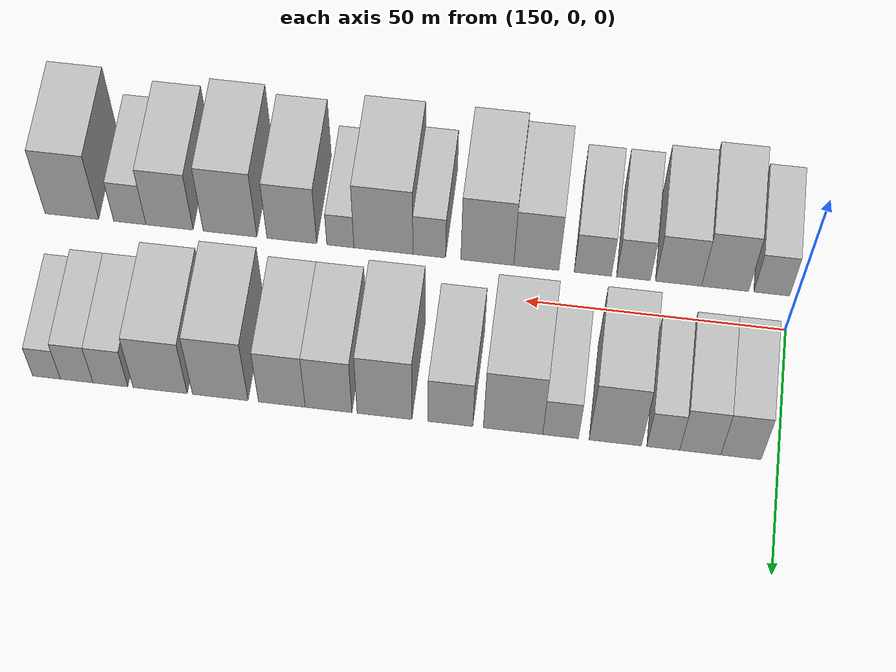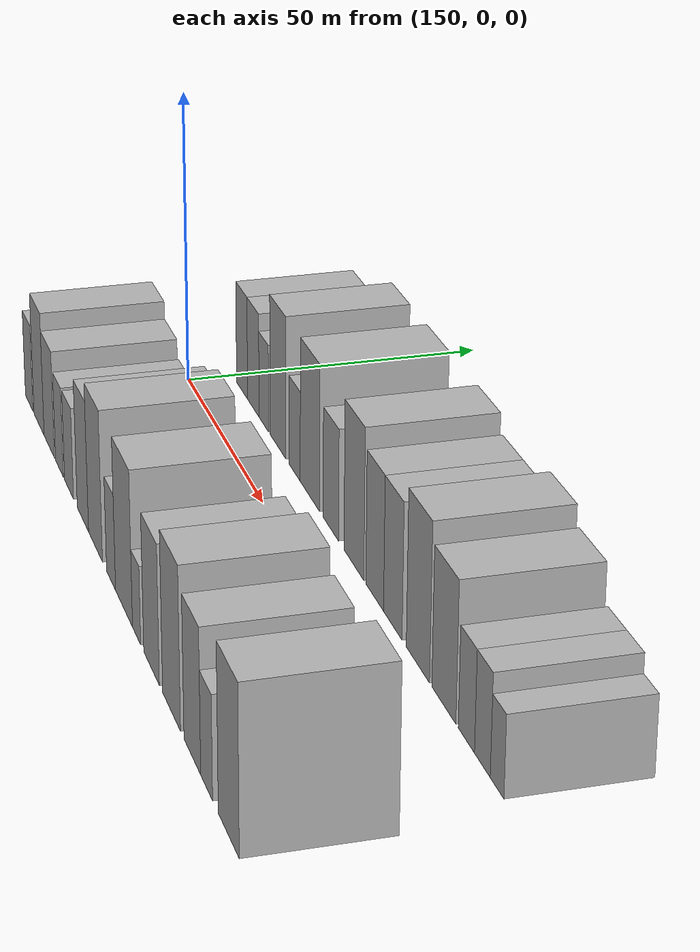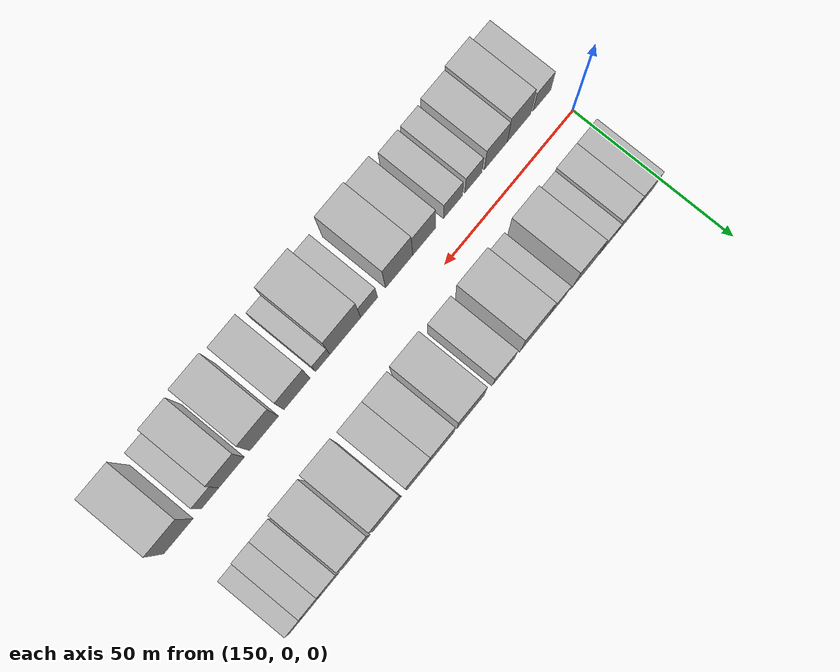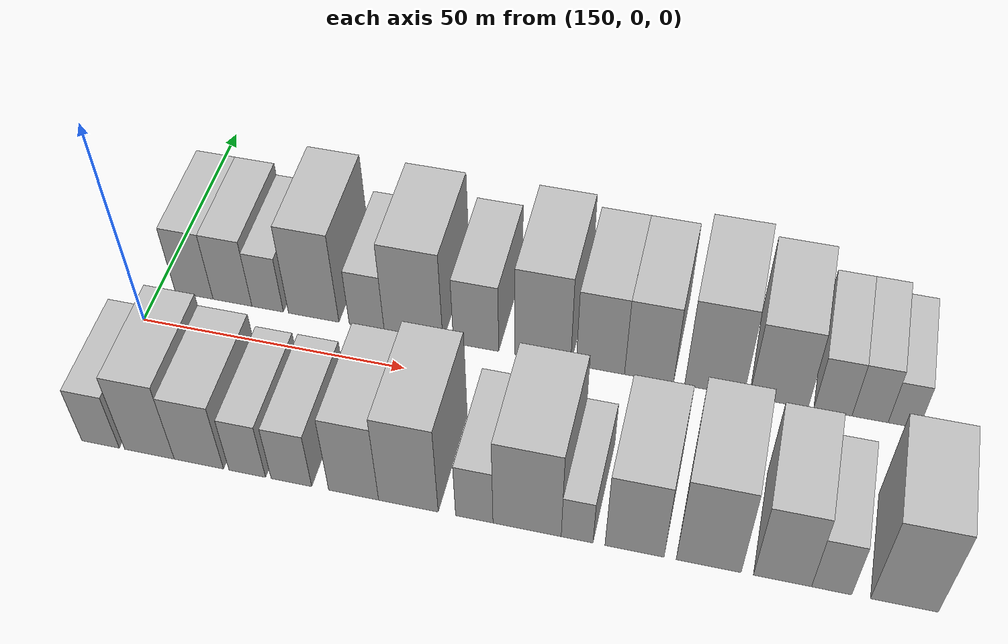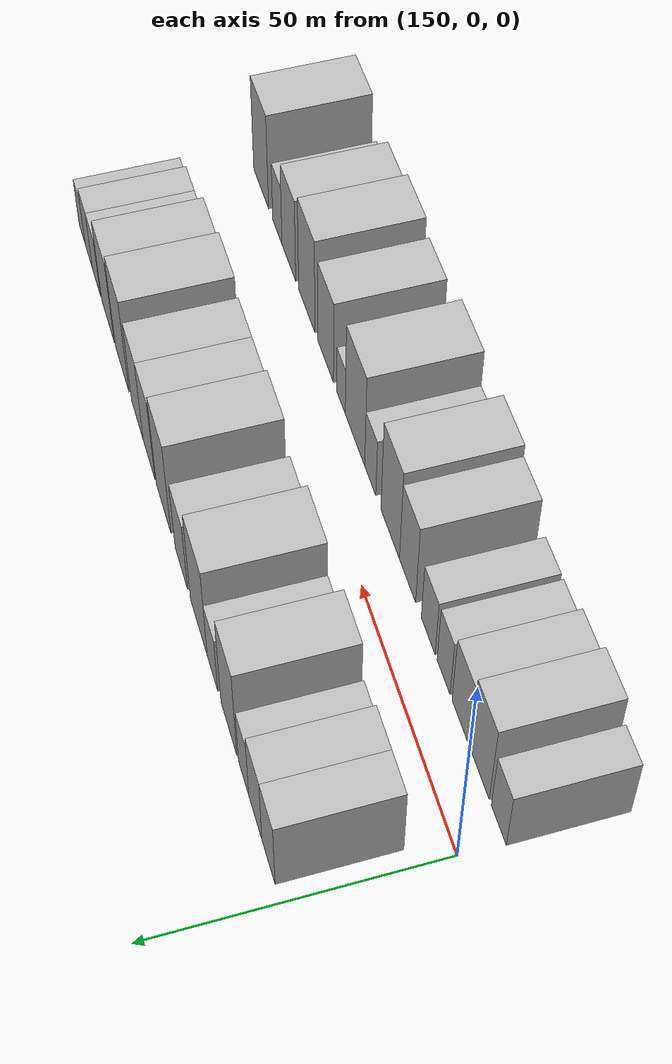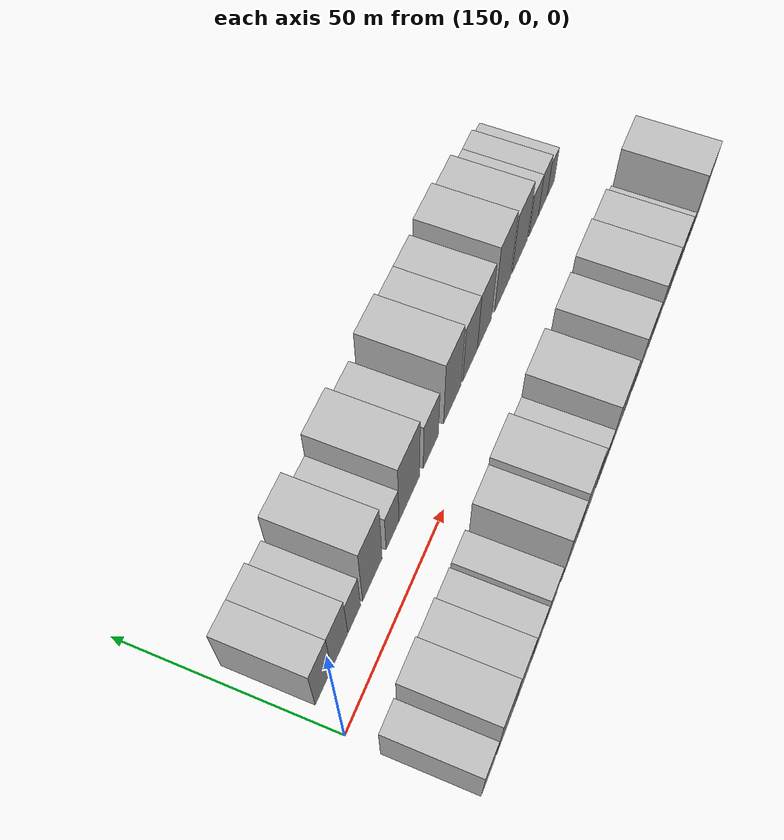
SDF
<sdf version="1.6">
 <world name="default">
  <model name="building_15">
   <static>1</static>
   <pose>156.9158 17.5000 0 0.000000 0.000000 1.570796</pose>
   <link name="link">
    <pose>0 0 9.00 0 0 0</pose>
    <collision name="collision"><geometry><box><size>20.0000 7.5116 18.0000</size></box></geometry></collision>
    <visual name="visual">
     <cast_shadows>0</cast_shadows>
     <geometry><box><size>20.0000 7.5116 18.0000</size></box></geometry>
     <material>
      <script>
       <uri>model://HANNAS_wall/materials/scripts</uri>
       <uri>model://HANNAS_wall/materials/textures</uri>
       <name>vrc/HANNAS_wall</name>
      </script>
     </material>
    </visual>
   </link>
  </model>
  <model name="building_16">
   <static>1</static>
   <pose>164.5097 17.5000 0 0.000000 0.000000 1.570796</pose>
   <link name="link">
    <pose>0 0 9.00 0 0 0</pose>
    <collision name="collision"><geometry><box><size>20.0000 7.6762 18.0000</size></box></geometry></collision>
    <visual name="visual">
     <cast_shadows>0</cast_shadows>
     <geometry><box><size>20.0000 7.6762 18.0000</size></box></geometry>
     <material>
      <script>
       <uri>model://HANNAS_wall/materials/scripts</uri>
       <uri>model://HANNAS_wall/materials/textures</uri>
       <name>vrc/HANNAS_wall</name>
      </script>
     </material>
    </visual>
   </link>
  </model>
  <model name="building_17">
   <static>1</static>
   <pose>171.4271 17.5000 0 0.000000 0.000000 1.570796</pose>
   <link name="link">
    <pose>0 0 7.50 0 0 0</pose>
    <collision name="collision"><geometry><box><size>20.0000 6.1585 15.0000</size></box></geometry></collision>
    <visual name="visual">
     <cast_shadows>0</cast_shadows>
     <geometry><box><size>20.0000 6.1585 15.0000</size></box></geometry>
     <material>
      <script>
       <uri>model://HANNAS_wall/materials/scripts</uri>
       <uri>model://HANNAS_wall/materials/textures</uri>
       <name>vrc/HANNAS_wall</name>
      </script>
     </material>
    </visual>
   </link>
  </model>
  <model name="building_18">
   <static>1</static>
   <pose>180.4077 17.5000 0 0.000000 0.000000 1.570796</pose>
   <link name="link">
    <pose>0 0 12.00 0 0 0</pose>
    <collision name="collision"><geometry><box><size>20.0000 9.8027 24.0000</size></box></geometry></collision>
    <visual name="visual">
     <cast_shadows>0</cast_shadows>
     <geometry><box><size>20.0000 9.8027 24.0000</size></box></geometry>
     <material>
      <script>
       <uri>model://HANNAS_wall/materials/scripts</uri>
       <uri>model://HANNAS_wall/materials/textures</uri>
       <name>vrc/HANNAS_wall</name>
      </script>
     </material>
    </visual>
   </link>
  </model>
  <model name="building_19">
   <static>1</static>
   <pose>190.6633 17.5000 0 0.000000 0.000000 1.570796</pose>
   <link name="link">
    <pose>0 0 7.50 0 0 0</pose>
    <collision name="collision"><geometry><box><size>20.0000 6.7086 15.0000</size></box></geometry></collision>
    <visual name="visual">
     <cast_shadows>0</cast_shadows>
     <geometry><box><size>20.0000 6.7086 15.0000</size></box></geometry>
     <material>
      <script>
       <uri>model://HANNAS_wall/materials/scripts</uri>
       <uri>model://HANNAS_wall/materials/textures</uri>
       <name>vrc/HANNAS_wall</name>
      </script>
     </material>
    </visual>
   </link>
  </model>
  <model name="building_20">
   <static>1</static>
   <pose>199.6065 17.5000 0 0.000000 0.000000 1.570796</pose>
   <link name="link">
    <pose>0 0 12.00 0 0 0</pose>
    <collision name="collision"><geometry><box><size>20.0000 11.1778 24.0000</size></box></geometry></collision>
    <visual name="visual">
     <cast_shadows>0</cast_shadows>
     <geometry><box><size>20.0000 11.1778 24.0000</size></box></geometry>
     <material>
      <script>
       <uri>model://HANNAS_wall/materials/scripts</uri>
       <uri>model://HANNAS_wall/materials/textures</uri>
       <name>vrc/HANNAS_wall</name>
      </script>
     </material>
    </visual>
   </link>
  </model>
  <model name="building_21">
   <static>1</static>
   <pose>211.4469 17.5000 0 0.000000 0.000000 1.570796</pose>
   <link name="link">
    <pose>0 0 9.00 0 0 0</pose>
    <collision name="collision"><geometry><box><size>20.0000 8.5030 18.0000</size></box></geometry></collision>
    <visual name="visual">
     <cast_shadows>0</cast_shadows>
     <geometry><box><size>20.0000 8.5030 18.0000</size></box></geometry>
     <material>
      <script>
       <uri>model://HANNAS_wall/materials/scripts</uri>
       <uri>model://HANNAS_wall/materials/textures</uri>
       <name>vrc/HANNAS_wall</name>
      </script>
     </material>
    </visual>
   </link>
  </model>
  <model name="building_22">
   <static>1</static>
   <pose>223.8881 17.5000 0 0.000000 0.000000 1.570796</pose>
   <link name="link">
    <pose>0 0 12.00 0 0 0</pose>
    <collision name="collision"><geometry><box><size>20.0000 10.3796 24.0000</size></box></geometry></collision>
    <visual name="visual">
     <cast_shadows>0</cast_shadows>
     <geometry><box><size>20.0000 10.3796 24.0000</size></box></geometry>
     <material>
      <script>
       <uri>model://HANNAS_wall/materials/scripts</uri>
       <uri>model://HANNAS_wall/materials/textures</uri>
       <name>vrc/HANNAS_wall</name>
      </script>
     </material>
    </visual>
   </link>
  </model>
  <model name="building_23">
   <static>1</static>
   <pose>234.5119 17.5000 0 0.000000 0.000000 1.570796</pose>
   <link name="link">
    <pose>0 0 10.50 0 0 0</pose>
    <collision name="collision"><geometry><box><size>20.0000 8.8680 21.0000</size></box></geometry></collision>
    <visual name="visual">
     <cast_shadows>0</cast_shadows>
     <geometry><box><size>20.0000 8.8680 21.0000</size></box></geometry>
     <material>
      <script>
       <uri>model://HANNAS_wall/materials/scripts</uri>
       <uri>model://HANNAS_wall/materials/textures</uri>
       <name>vrc/HANNAS_wall</name>
      </script>
     </material>
    </visual>
   </link>
  </model>
  <model name="building_24">
   <static>1</static>
   <pose>243.3995 17.5000 0 0.000000 0.000000 1.570796</pose>
   <link name="link">
    <pose>0 0 10.50 0 0 0</pose>
    <collision name="collision"><geometry><box><size>20.0000 8.9071 21.0000</size></box></geometry></collision>
    <visual name="visual">
     <cast_shadows>0</cast_shadows>
     <geometry><box><size>20.0000 8.9071 21.0000</size></box></geometry>
     <material>
      <script>
       <uri>model://HANNAS_wall/materials/scripts</uri>
       <uri>model://HANNAS_wall/materials/textures</uri>
       <name>vrc/HANNAS_wall</name>
      </script>
     </material>
    </visual>
   </link>
  </model>
  <model name="building_25">
   <static>1</static>
   <pose>255.1642 17.5000 0 0.000000 0.000000 1.570796</pose>
   <link name="link">
    <pose>0 0 12.00 0 0 0</pose>
    <collision name="collision"><geometry><box><size>20.0000 10.6224 24.0000</size></box></geometry></collision>
    <visual name="visual">
     <cast_shadows>0</cast_shadows>
     <geometry><box><size>20.0000 10.6224 24.0000</size></box></geometry>
     <material>
      <script>
       <uri>model://HANNAS_wall/materials/scripts</uri>
       <uri>model://HANNAS_wall/materials/textures</uri>
       <name>vrc/HANNAS_wall</name>
      </script>
     </material>
    </visual>
   </link>
  </model>
  <model name="building_26">
   <static>1</static>
   <pose>266.6777 17.5000 0 0.000000 0.000000 1.570796</pose>
   <link name="link">
    <pose>0 0 10.50 0 0 0</pose>
    <collision name="collision"><geometry><box><size>20.0000 10.4044 21.0000</size></box></geometry></collision>
    <visual name="visual">
     <cast_shadows>0</cast_shadows>
     <geometry><box><size>20.0000 10.4044 21.0000</size></box></geometry>
     <material>
      <script>
       <uri>model://HANNAS_wall/materials/scripts</uri>
       <uri>model://HANNAS_wall/materials/textures</uri>
       <name>vrc/HANNAS_wall</name>
      </script>
     </material>
    </visual>
   </link>
  </model>
  <model name="building_27">
   <static>1</static>
   <pose>276.2367 17.5000 0 0.000000 0.000000 1.570796</pose>
   <link name="link">
    <pose>0 0 7.50 0 0 0</pose>
    <collision name="collision"><geometry><box><size>20.0000 6.7136 15.0000</size></box></geometry></collision>
    <visual name="visual">
     <cast_shadows>0</cast_shadows>
     <geometry><box><size>20.0000 6.7136 15.0000</size></box></geometry>
     <material>
      <script>
       <uri>model://HANNAS_wall/materials/scripts</uri>
       <uri>model://HANNAS_wall/materials/textures</uri>
       <name>vrc/HANNAS_wall</name>
      </script>
     </material>
    </visual>
   </link>
  </model>
  <model name="building_28">
   <static>1</static>
   <pose>282.7351 17.5000 0 0.000000 0.000000 1.570796</pose>
   <link name="link">
    <pose>0 0 7.50 0 0 0</pose>
    <collision name="collision"><geometry><box><size>20.0000 6.2833 15.0000</size></box></geometry></collision>
    <visual name="visual">
     <cast_shadows>0</cast_shadows>
     <geometry><box><size>20.0000 6.2833 15.0000</size></box></geometry>
     <material>
      <script>
       <uri>model://HANNAS_wall/materials/scripts</uri>
       <uri>model://HANNAS_wall/materials/textures</uri>
       <name>vrc/HANNAS_wall</name>
      </script>
     </material>
    </visual>
   </link>
  </model>
  <model name="building_29">
   <static>1</static>
   <pose>288.5434 17.5000 0 0.000000 0.000000 1.570796</pose>
   <link name="link">
    <pose>0 0 6.00 0 0 0</pose>
    <collision name="collision"><geometry><box><size>20.0000 5.3332 12.0000</size></box></geometry></collision>
    <visual name="visual">
     <cast_shadows>0</cast_shadows>
     <geometry><box><size>20.0000 5.3332 12.0000</size></box></geometry>
     <material>
      <script>
       <uri>model://HANNAS_wall/materials/scripts</uri>
       <uri>model://HANNAS_wall/materials/textures</uri>
       <name>vrc/HANNAS_wall</name>
      </script>
     </material>
    </visual>
   </link>
  </model>
  <model name="building_44">
   <static>1</static>
   <pose>153.0250 -17.5000 0 0.000000 0.000000 1.570796</pose>
   <link name="link">
    <pose>0 0 7.50 0 0 0</pose>
    <collision name="collision"><geometry><box><size>20.0000 6.9337 15.0000</size></box></geometry></collision>
    <visual name="visual">
     <cast_shadows>0</cast_shadows>
     <geometry><box><size>20.0000 6.9337 15.0000</size></box></geometry>
     <material>
      <script>
       <uri>model://HANNAS_wall/materials/scripts</uri>
       <uri>model://HANNAS_wall/materials/textures</uri>
       <name>vrc/HANNAS_wall</name>
      </script>
     </material>
    </visual>
   </link>
  </model>
  <model name="building_45">
   <static>1</static>
   <pose>162.0478 -17.5000 0 0.000000 0.000000 1.570796</pose>
   <link name="link">
    <pose>0 0 10.50 0 0 0</pose>
    <collision name="collision"><geometry><box><size>20.0000 9.1119 21.0000</size></box></geometry></collision>
    <visual name="visual">
     <cast_shadows>0</cast_shadows>
     <geometry><box><size>20.0000 9.1119 21.0000</size></box></geometry>
     <material>
      <script>
       <uri>model://HANNAS_wall/materials/scripts</uri>
       <uri>model://HANNAS_wall/materials/textures</uri>
       <name>vrc/HANNAS_wall</name>
      </script>
     </material>
    </visual>
   </link>
  </model>
  <model name="building_46">
   <static>1</static>
   <pose>171.0785 -17.5000 0 0.000000 0.000000 1.570796</pose>
   <link name="link">
    <pose>0 0 9.00 0 0 0</pose>
    <collision name="collision"><geometry><box><size>20.0000 8.9495 18.0000</size></box></geometry></collision>
    <visual name="visual">
     <cast_shadows>0</cast_shadows>
     <geometry><box><size>20.0000 8.9495 18.0000</size></box></geometry>
     <material>
      <script>
       <uri>model://HANNAS_wall/materials/scripts</uri>
       <uri>model://HANNAS_wall/materials/textures</uri>
       <name>vrc/HANNAS_wall</name>
      </script>
     </material>
    </visual>
   </link>
  </model>
  <model name="building_47">
   <static>1</static>
   <pose>179.8401 -17.5000 0 0.000000 0.000000 1.570796</pose>
   <link name="link">
    <pose>0 0 7.50 0 0 0</pose>
    <collision name="collision"><geometry><box><size>20.0000 6.5736 15.0000</size></box></geometry></collision>
    <visual name="visual">
     <cast_shadows>0</cast_shadows>
     <geometry><box><size>20.0000 6.5736 15.0000</size></box></geometry>
     <material>
      <script>
       <uri>model://HANNAS_wall/materials/scripts</uri>
       <uri>model://HANNAS_wall/materials/textures</uri>
       <name>vrc/HANNAS_wall</name>
      </script>
     </material>
    </visual>
   </link>
  </model>
  <model name="building_48">
   <static>1</static>
   <pose>187.7456 -17.5000 0 0.000000 0.000000 1.570796</pose>
   <link name="link">
    <pose>0 0 7.50 0 0 0</pose>
    <collision name="collision"><geometry><box><size>20.0000 7.2375 15.0000</size></box></geometry></collision>
    <visual name="visual">
     <cast_shadows>0</cast_shadows>
     <geometry><box><size>20.0000 7.2375 15.0000</size></box></geometry>
     <material>
      <script>
       <uri>model://HANNAS_wall/materials/scripts</uri>
       <uri>model://HANNAS_wall/materials/textures</uri>
       <name>vrc/HANNAS_wall</name>
      </script>
     </material>
    </visual>
   </link>
  </model>
  <model name="building_49">
   <static>1</static>
   <pose>198.7672 -17.5000 0 0.000000 0.000000 1.570796</pose>
   <link name="link">
    <pose>0 0 10.50 0 0 0</pose>
    <collision name="collision"><geometry><box><size>20.0000 8.8056 21.0000</size></box></geometry></collision>
    <visual name="visual">
     <cast_shadows>0</cast_shadows>
     <geometry><box><size>20.0000 8.8056 21.0000</size></box></geometry>
     <material>
      <script>
       <uri>model://HANNAS_wall/materials/scripts</uri>
       <uri>model://HANNAS_wall/materials/textures</uri>
       <name>vrc/HANNAS_wall</name>
      </script>
     </material>
    </visual>
   </link>
  </model>
  <model name="building_50">
   <static>1</static>
   <pose>208.3605 -17.5000 0 0.000000 0.000000 1.570796</pose>
   <link name="link">
    <pose>0 0 12.00 0 0 0</pose>
    <collision name="collision"><geometry><box><size>20.0000 10.3810 24.0000</size></box></geometry></collision>
    <visual name="visual">
     <cast_shadows>0</cast_shadows>
     <geometry><box><size>20.0000 10.3810 24.0000</size></box></geometry>
     <material>
      <script>
       <uri>model://HANNAS_wall/materials/scripts</uri>
       <uri>model://HANNAS_wall/materials/textures</uri>
       <name>vrc/HANNAS_wall</name>
      </script>
     </material>
    </visual>
   </link>
  </model>
  <model name="building_51">
   <static>1</static>
   <pose>219.7620 -17.5000 0 0.000000 0.000000 1.570796</pose>
   <link name="link">
    <pose>0 0 7.50 0 0 0</pose>
    <collision name="collision"><geometry><box><size>20.0000 6.4220 15.0000</size></box></geometry></collision>
    <visual name="visual">
     <cast_shadows>0</cast_shadows>
     <geometry><box><size>20.0000 6.4220 15.0000</size></box></geometry>
     <material>
      <script>
       <uri>model://HANNAS_wall/materials/scripts</uri>
       <uri>model://HANNAS_wall/materials/textures</uri>
       <name>vrc/HANNAS_wall</name>
      </script>
     </material>
    </visual>
   </link>
  </model>
  <model name="building_52">
   <static>1</static>
   <pose>228.7739 -17.5000 0 0.000000 0.000000 1.570796</pose>
   <link name="link">
    <pose>0 0 12.00 0 0 0</pose>
    <collision name="collision"><geometry><box><size>20.0000 11.6018 24.0000</size></box></geometry></collision>
    <visual name="visual">
     <cast_shadows>0</cast_shadows>
     <geometry><box><size>20.0000 11.6018 24.0000</size></box></geometry>
     <material>
      <script>
       <uri>model://HANNAS_wall/materials/scripts</uri>
       <uri>model://HANNAS_wall/materials/textures</uri>
       <name>vrc/HANNAS_wall</name>
      </script>
     </material>
    </visual>
   </link>
  </model>
  <model name="building_53">
   <static>1</static>
   <pose>237.2526 -17.5000 0 0.000000 0.000000 1.570796</pose>
   <link name="link">
    <pose>0 0 6.00 0 0 0</pose>
    <collision name="collision"><geometry><box><size>20.0000 5.3558 12.0000</size></box></geometry></collision>
    <visual name="visual">
     <cast_shadows>0</cast_shadows>
     <geometry><box><size>20.0000 5.3558 12.0000</size></box></geometry>
     <material>
      <script>
       <uri>model://HANNAS_wall/materials/scripts</uri>
       <uri>model://HANNAS_wall/materials/textures</uri>
       <name>vrc/HANNAS_wall</name>
      </script>
     </material>
    </visual>
   </link>
  </model>
  <model name="building_54">
   <static>1</static>
   <pose>246.8552 -17.5000 0 0.000000 0.000000 1.570796</pose>
   <link name="link">
    <pose>0 0 10.50 0 0 0</pose>
    <collision name="collision"><geometry><box><size>20.0000 9.8492 21.0000</size></box></geometry></collision>
    <visual name="visual">
     <cast_shadows>0</cast_shadows>
     <geometry><box><size>20.0000 9.8492 21.0000</size></box></geometry>
     <material>
      <script>
       <uri>model://HANNAS_wall/materials/scripts</uri>
       <uri>model://HANNAS_wall/materials/textures</uri>
       <name>vrc/HANNAS_wall</name>
      </script>
     </material>
    </visual>
   </link>
  </model>
  <model name="building_55">
   <static>1</static>
   <pose>259.1132 -17.5000 0 0.000000 0.000000 1.570796</pose>
   <link name="link">
    <pose>0 0 12.00 0 0 0</pose>
    <collision name="collision"><geometry><box><size>20.0000 10.6668 24.0000</size></box></geometry></collision>
    <visual name="visual">
     <cast_shadows>0</cast_shadows>
     <geometry><box><size>20.0000 10.6668 24.0000</size></box></geometry>
     <material>
      <script>
       <uri>model://HANNAS_wall/materials/scripts</uri>
       <uri>model://HANNAS_wall/materials/textures</uri>
       <name>vrc/HANNAS_wall</name>
      </script>
     </material>
    </visual>
   </link>
  </model>
  <model name="building_56">
   <static>1</static>
   <pose>271.1464 -17.5000 0 0.000000 0.000000 1.570796</pose>
   <link name="link">
    <pose>0 0 10.50 0 0 0</pose>
    <collision name="collision"><geometry><box><size>20.0000 9.3997 21.0000</size></box></geometry></collision>
    <visual name="visual">
     <cast_shadows>0</cast_shadows>
     <geometry><box><size>20.0000 9.3997 21.0000</size></box></geometry>
     <material>
      <script>
       <uri>model://HANNAS_wall/materials/scripts</uri>
       <uri>model://HANNAS_wall/materials/textures</uri>
       <name>vrc/HANNAS_wall</name>
      </script>
     </material>
    </visual>
   </link>
  </model>
  <model name="building_57">
   <static>1</static>
   <pose>279.0650 -17.5000 0 0.000000 0.000000 1.570796</pose>
   <link name="link">
    <pose>0 0 7.50 0 0 0</pose>
    <collision name="collision"><geometry><box><size>20.0000 6.4376 15.0000</size></box></geometry></collision>
    <visual name="visual">
     <cast_shadows>0</cast_shadows>
     <geometry><box><size>20.0000 6.4376 15.0000</size></box></geometry>
     <material>
      <script>
       <uri>model://HANNAS_wall/materials/scripts</uri>
       <uri>model://HANNAS_wall/materials/textures</uri>
       <name>vrc/HANNAS_wall</name>
      </script>
     </material>
    </visual>
   </link>
  </model>
  <model name="building_58">
   <static>1</static>
   <pose>290.6388 -17.5000 0 0.000000 0.000000 1.570796</pose>
   <link name="link">
    <pose>0 0 12.00 0 0 0</pose>
    <collision name="collision"><geometry><box><size>20.0000 10.7099 24.0000</size></box></geometry></collision>
    <visual name="visual">
     <cast_shadows>0</cast_shadows>
     <geometry><box><size>20.0000 10.7099 24.0000</size></box></geometry>
     <material>
      <script>
       <uri>model://HANNAS_wall/materials/scripts</uri>
       <uri>model://HANNAS_wall/materials/textures</uri>
       <name>vrc/HANNAS_wall</name>
      </script>
     </material>
    </visual>
   </link>
  </model>
 </world>
</sdf>
